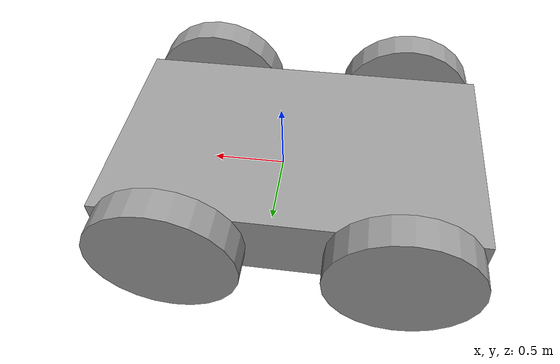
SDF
<?xml version='1.0'?>
<sdf version='1.6'>
  <model name='New_Car'>
    <link name='link_0'>
      <inertial>
        <mass>1</mass>
        <inertia>
          <ixx>0.166667</ixx>
          <ixy>0</ixy>
          <ixz>0</ixz>
          <iyy>0.166667</iyy>
          <iyz>0</iyz>
          <izz>0.166667</izz>
        </inertia>
        <pose frame=''>0 0 0 0 -0 0</pose>
      </inertial>
      <pose frame=''>-0.117187 6e-06 0.007816 0 -0 0</pose>
      <gravity>1</gravity>
      <self_collide>0</self_collide>
      <kinematic>0</kinematic>
      <enable_wind>0</enable_wind>
      <visual name='visual'>
        <pose frame=''>0 0 0 0 -0 0</pose>
        <geometry>
          <box>
            <size>2.5 1.5 0.5</size>
          </box>
        </geometry>
        <material>
          <lighting>1</lighting>
          <script>
            <uri>file://media/materials/scripts/gazebo.material</uri>
            <name>Gazebo/Grey</name>
          </script>
          <shader type='vertex'>
            <normal_map>__default__</normal_map>
          </shader>
          <ambient>0.3 0.3 0.3 1</ambient>
          <diffuse>0.7 0.7 0.7 1</diffuse>
          <specular>0.01 0.01 0.01 1</specular>
          <emissive>0 0 0 1</emissive>
        </material>
        <transparency>0</transparency>
        <cast_shadows>1</cast_shadows>
      </visual>
      <collision name='collision'>
        <laser_retro>0</laser_retro>
        <max_contacts>10</max_contacts>
        <pose frame=''>0 0 0 0 -0 0</pose>
        <geometry>
          <box>
            <size>2.5 1.5 0.5</size>
          </box>
        </geometry>
        <surface>
          <friction>
            <ode>
              <mu>1</mu>
              <mu2>1</mu2>
              <fdir1>0 0 0</fdir1>
              <slip1>0</slip1>
              <slip2>0</slip2>
            </ode>
            <torsional>
              <coefficient>1</coefficient>
              <patch_radius>0</patch_radius>
              <surface_radius>0</surface_radius>
              <use_patch_radius>1</use_patch_radius>
              <ode>
                <slip>0</slip>
              </ode>
            </torsional>
          </friction>
          <bounce>
            <restitution_coefficient>0</restitution_coefficient>
            <threshold>1e+06</threshold>
          </bounce>
          <contact>
            <collide_without_contact>0</collide_without_contact>
            <collide_without_contact_bitmask>1</collide_without_contact_bitmask>
            <collide_bitmask>1</collide_bitmask>
            <ode>
              <soft_cfm>0</soft_cfm>
              <soft_erp>0.2</soft_erp>
              <kp>1e+13</kp>
              <kd>1</kd>
              <max_vel>0.01</max_vel>
              <min_depth>0</min_depth>
            </ode>
            <bullet>
              <split_impulse>1</split_impulse>
              <split_impulse_penetration_threshold>-0.01</split_impulse_penetration_threshold>
              <soft_cfm>0</soft_cfm>
              <soft_erp>0.2</soft_erp>
              <kp>1e+13</kp>
              <kd>1</kd>
            </bullet>
          </contact>
        </surface>
      </collision>
    </link>
    <link name='link_1'>
      <inertial>
        <mass>0.21093</mass>
        <inertia>
          <ixx>0.0139652</ixx>
          <ixy>0</ixy>
          <ixz>0</ixz>
          <iyy>0.0139652</iyy>
          <iyz>0</iyz>
          <izz>0.0263662</izz>
        </inertia>
        <pose frame=''>0 0 0 0 -0 0</pose>
      </inertial>
      <pose frame=''>0.632813 -0.855861 0.007802 1.57 -0 0</pose>
      <gravity>1</gravity>
      <self_collide>0</self_collide>
      <kinematic>0</kinematic>
      <enable_wind>0</enable_wind>
      <visual name='visual'>
        <pose frame=''>0 0 0 0 -0 0</pose>
        <geometry>
          <cylinder>
            <radius>0.5</radius>
            <length>0.210938</length>
          </cylinder>
        </geometry>
        <material>
          <lighting>1</lighting>
          <script>
            <uri>file://media/materials/scripts/gazebo.material</uri>
            <name>Gazebo/Grey</name>
          </script>
          <shader type='vertex'>
            <normal_map>__default__</normal_map>
          </shader>
          <ambient>0.3 0.3 0.3 1</ambient>
          <diffuse>0.7 0.7 0.7 1</diffuse>
          <specular>0.01 0.01 0.01 1</specular>
          <emissive>0 0 0 1</emissive>
        </material>
        <transparency>0</transparency>
        <cast_shadows>1</cast_shadows>
      </visual>
      <collision name='collision'>
        <laser_retro>0</laser_retro>
        <max_contacts>10</max_contacts>
        <pose frame=''>0 0 0 0 -0 0</pose>
        <geometry>
          <cylinder>
            <radius>0.5</radius>
            <length>0.210938</length>
          </cylinder>
        </geometry>
        <surface>
          <friction>
            <ode>
              <mu>1</mu>
              <mu2>1</mu2>
              <fdir1>0 0 0</fdir1>
              <slip1>0</slip1>
              <slip2>0</slip2>
            </ode>
            <torsional>
              <coefficient>1</coefficient>
              <patch_radius>0</patch_radius>
              <surface_radius>0</surface_radius>
              <use_patch_radius>1</use_patch_radius>
              <ode>
                <slip>0</slip>
              </ode>
            </torsional>
          </friction>
          <bounce>
            <restitution_coefficient>0</restitution_coefficient>
            <threshold>1e+06</threshold>
          </bounce>
          <contact>
            <collide_without_contact>0</collide_without_contact>
            <collide_without_contact_bitmask>1</collide_without_contact_bitmask>
            <collide_bitmask>1</collide_bitmask>
            <ode>
              <soft_cfm>0</soft_cfm>
              <soft_erp>0.2</soft_erp>
              <kp>1e+13</kp>
              <kd>1</kd>
              <max_vel>0.01</max_vel>
              <min_depth>0</min_depth>
            </ode>
            <bullet>
              <split_impulse>1</split_impulse>
              <split_impulse_penetration_threshold>-0.01</split_impulse_penetration_threshold>
              <soft_cfm>0</soft_cfm>
              <soft_erp>0.2</soft_erp>
              <kp>1e+13</kp>
              <kd>1</kd>
            </bullet>
          </contact>
        </surface>
      </collision>
    </link>
    <link name='link_1_clone'>
      <inertial>
        <mass>0.21093</mass>
        <inertia>
          <ixx>0.0139652</ixx>
          <ixy>0</ixy>
          <ixz>0</ixz>
          <iyy>0.0139652</iyy>
          <iyz>0</iyz>
          <izz>0.0263662</izz>
        </inertia>
        <pose frame=''>0 0 0 0 -0 0</pose>
      </inertial>
      <pose frame=''>0.632813 0.855873 0.007816 1.57 -0 0</pose>
      <gravity>1</gravity>
      <self_collide>0</self_collide>
      <kinematic>0</kinematic>
      <enable_wind>0</enable_wind>
      <visual name='visual'>
        <pose frame=''>0 0 0 0 -0 0</pose>
        <geometry>
          <cylinder>
            <radius>0.5</radius>
            <length>0.210938</length>
          </cylinder>
        </geometry>
        <material>
          <lighting>1</lighting>
          <script>
            <uri>file://media/materials/scripts/gazebo.material</uri>
            <name>Gazebo/Grey</name>
          </script>
          <shader type='vertex'>
            <normal_map>__default__</normal_map>
          </shader>
          <ambient>0.3 0.3 0.3 1</ambient>
          <diffuse>0.7 0.7 0.7 1</diffuse>
          <specular>0.01 0.01 0.01 1</specular>
          <emissive>0 0 0 1</emissive>
        </material>
        <transparency>0</transparency>
        <cast_shadows>1</cast_shadows>
      </visual>
      <collision name='collision'>
        <laser_retro>0</laser_retro>
        <max_contacts>10</max_contacts>
        <pose frame=''>0 0 0 0 -0 0</pose>
        <geometry>
          <cylinder>
            <radius>0.5</radius>
            <length>0.210938</length>
          </cylinder>
        </geometry>
        <surface>
          <friction>
            <ode>
              <mu>1</mu>
              <mu2>1</mu2>
              <fdir1>0 0 0</fdir1>
              <slip1>0</slip1>
              <slip2>0</slip2>
            </ode>
            <torsional>
              <coefficient>1</coefficient>
              <patch_radius>0</patch_radius>
              <surface_radius>0</surface_radius>
              <use_patch_radius>1</use_patch_radius>
              <ode>
                <slip>0</slip>
              </ode>
            </torsional>
          </friction>
          <bounce>
            <restitution_coefficient>0</restitution_coefficient>
            <threshold>1e+06</threshold>
          </bounce>
          <contact>
            <collide_without_contact>0</collide_without_contact>
            <collide_without_contact_bitmask>1</collide_without_contact_bitmask>
            <collide_bitmask>1</collide_bitmask>
            <ode>
              <soft_cfm>0</soft_cfm>
              <soft_erp>0.2</soft_erp>
              <kp>1e+13</kp>
              <kd>1</kd>
              <max_vel>0.01</max_vel>
              <min_depth>0</min_depth>
            </ode>
            <bullet>
              <split_impulse>1</split_impulse>
              <split_impulse_penetration_threshold>-0.01</split_impulse_penetration_threshold>
              <soft_cfm>0</soft_cfm>
              <soft_erp>0.2</soft_erp>
              <kp>1e+13</kp>
              <kd>1</kd>
            </bullet>
          </contact>
        </surface>
      </collision>
    </link>
    <link name='link_1_clone_0'>
      <inertial>
        <mass>0.21093</mass>
        <inertia>
          <ixx>0.0139652</ixx>
          <ixy>0</ixy>
          <ixz>0</ixz>
          <iyy>0.0139652</iyy>
          <iyz>0</iyz>
          <izz>0.0263662</izz>
        </inertia>
        <pose frame=''>0 0 0 0 -0 0</pose>
      </inertial>
      <pose frame=''>-0.867187 -0.855861 0.007816 1.57 -0 0</pose>
      <gravity>1</gravity>
      <self_collide>0</self_collide>
      <kinematic>0</kinematic>
      <enable_wind>0</enable_wind>
      <visual name='visual'>
        <pose frame=''>0 0 0 0 -0 0</pose>
        <geometry>
          <cylinder>
            <radius>0.5</radius>
            <length>0.210938</length>
          </cylinder>
        </geometry>
        <material>
          <lighting>1</lighting>
          <script>
            <uri>file://media/materials/scripts/gazebo.material</uri>
            <name>Gazebo/Grey</name>
          </script>
          <shader type='vertex'>
            <normal_map>__default__</normal_map>
          </shader>
          <ambient>0.3 0.3 0.3 1</ambient>
          <diffuse>0.7 0.7 0.7 1</diffuse>
          <specular>0.01 0.01 0.01 1</specular>
          <emissive>0 0 0 1</emissive>
        </material>
        <transparency>0</transparency>
        <cast_shadows>1</cast_shadows>
      </visual>
      <collision name='collision'>
        <laser_retro>0</laser_retro>
        <max_contacts>10</max_contacts>
        <pose frame=''>0 0 0 0 -0 0</pose>
        <geometry>
          <cylinder>
            <radius>0.5</radius>
            <length>0.210938</length>
          </cylinder>
        </geometry>
        <surface>
          <friction>
            <ode>
              <mu>1</mu>
              <mu2>1</mu2>
              <fdir1>0 0 0</fdir1>
              <slip1>0</slip1>
              <slip2>0</slip2>
            </ode>
            <torsional>
              <coefficient>1</coefficient>
              <patch_radius>0</patch_radius>
              <surface_radius>0</surface_radius>
              <use_patch_radius>1</use_patch_radius>
              <ode>
                <slip>0</slip>
              </ode>
            </torsional>
          </friction>
          <bounce>
            <restitution_coefficient>0</restitution_coefficient>
            <threshold>1e+06</threshold>
          </bounce>
          <contact>
            <collide_without_contact>0</collide_without_contact>
            <collide_without_contact_bitmask>1</collide_without_contact_bitmask>
            <collide_bitmask>1</collide_bitmask>
            <ode>
              <soft_cfm>0</soft_cfm>
              <soft_erp>0.2</soft_erp>
              <kp>1e+13</kp>
              <kd>1</kd>
              <max_vel>0.01</max_vel>
              <min_depth>0</min_depth>
            </ode>
            <bullet>
              <split_impulse>1</split_impulse>
              <split_impulse_penetration_threshold>-0.01</split_impulse_penetration_threshold>
              <soft_cfm>0</soft_cfm>
              <soft_erp>0.2</soft_erp>
              <kp>1e+13</kp>
              <kd>1</kd>
            </bullet>
          </contact>
        </surface>
      </collision>
    </link>
    <link name='link_1_clone_1'>
      <inertial>
        <mass>0.21093</mass>
        <inertia>
          <ixx>0.0139652</ixx>
          <ixy>0</ixy>
          <ixz>0</ixz>
          <iyy>0.0139652</iyy>
          <iyz>0</iyz>
          <izz>0.0263662</izz>
        </inertia>
        <pose frame=''>0 0 0 0 -0 0</pose>
      </inertial>
      <pose frame=''>-0.867187 0.855873 0.007816 1.57 -0 0</pose>
      <gravity>1</gravity>
      <self_collide>0</self_collide>
      <kinematic>0</kinematic>
      <enable_wind>0</enable_wind>
      <visual name='visual'>
        <pose frame=''>0 0 0 0 -0 0</pose>
        <geometry>
          <cylinder>
            <radius>0.5</radius>
            <length>0.210938</length>
          </cylinder>
        </geometry>
        <material>
          <lighting>1</lighting>
          <script>
            <uri>file://media/materials/scripts/gazebo.material</uri>
            <name>Gazebo/Grey</name>
          </script>
          <shader type='vertex'>
            <normal_map>__default__</normal_map>
          </shader>
          <ambient>0.3 0.3 0.3 1</ambient>
          <diffuse>0.7 0.7 0.7 1</diffuse>
          <specular>0.01 0.01 0.01 1</specular>
          <emissive>0 0 0 1</emissive>
        </material>
        <transparency>0</transparency>
        <cast_shadows>1</cast_shadows>
      </visual>
      <collision name='collision'>
        <laser_retro>0</laser_retro>
        <max_contacts>10</max_contacts>
        <pose frame=''>0 0 0 0 -0 0</pose>
        <geometry>
          <cylinder>
            <radius>0.5</radius>
            <length>0.210938</length>
          </cylinder>
        </geometry>
        <surface>
          <friction>
            <ode>
              <mu>1</mu>
              <mu2>1</mu2>
              <fdir1>0 0 0</fdir1>
              <slip1>0</slip1>
              <slip2>0</slip2>
            </ode>
            <torsional>
              <coefficient>1</coefficient>
              <patch_radius>0</patch_radius>
              <surface_radius>0</surface_radius>
              <use_patch_radius>1</use_patch_radius>
              <ode>
                <slip>0</slip>
              </ode>
            </torsional>
          </friction>
          <bounce>
            <restitution_coefficient>0</restitution_coefficient>
            <threshold>1e+06</threshold>
          </bounce>
          <contact>
            <collide_without_contact>0</collide_without_contact>
            <collide_without_contact_bitmask>1</collide_without_contact_bitmask>
            <collide_bitmask>1</collide_bitmask>
            <ode>
              <soft_cfm>0</soft_cfm>
              <soft_erp>0.2</soft_erp>
              <kp>1e+13</kp>
              <kd>1</kd>
              <max_vel>0.01</max_vel>
              <min_depth>0</min_depth>
            </ode>
            <bullet>
              <split_impulse>1</split_impulse>
              <split_impulse_penetration_threshold>-0.01</split_impulse_penetration_threshold>
              <soft_cfm>0</soft_cfm>
              <soft_erp>0.2</soft_erp>
              <kp>1e+13</kp>
              <kd>1</kd>
            </bullet>
          </contact>
        </surface>
      </collision>
    </link>
    <link name='link_2'>
      <inertial>
        <mass>0.00854652</mass>
        <inertia>
          <ixx>0.00160704</ixx>
          <ixy>0</ixy>
          <ixz>0</ixz>
          <iyy>0.00160704</iyy>
          <iyz>0</iyz>
          <izz>9.13434e-06</izz>
        </inertia>
        <pose frame=''>0 0 0 0 -0 0</pose>
      </inertial>
      <pose frame=''>0.58593 -3.1e-05 -0.039067 1.57 -0 0</pose>
      <gravity>1</gravity>
      <self_collide>0</self_collide>
      <kinematic>0</kinematic>
      <enable_wind>0</enable_wind>
      <visual name='visual'>
        <pose frame=''>0 0 0 0 -0 0</pose>
        <geometry>
          <cylinder>
            <radius>0.0462337</radius>
            <length>1.5</length>
          </cylinder>
        </geometry>
        <material>
          <lighting>1</lighting>
          <script>
            <uri>file://media/materials/scripts/gazebo.material</uri>
            <name>Gazebo/Grey</name>
          </script>
          <shader type='vertex'>
            <normal_map>__default__</normal_map>
          </shader>
          <ambient>0.3 0.3 0.3 1</ambient>
          <diffuse>0.7 0.7 0.7 1</diffuse>
          <specular>0.01 0.01 0.01 1</specular>
          <emissive>0 0 0 1</emissive>
        </material>
        <transparency>0</transparency>
        <cast_shadows>1</cast_shadows>
      </visual>
      <collision name='collision'>
        <laser_retro>0</laser_retro>
        <max_contacts>10</max_contacts>
        <pose frame=''>0 0 0 0 -0 0</pose>
        <geometry>
          <cylinder>
            <radius>0.046234</radius>
            <length>1.5</length>
          </cylinder>
        </geometry>
        <surface>
          <friction>
            <ode>
              <mu>1</mu>
              <mu2>1</mu2>
              <fdir1>0 0 0</fdir1>
              <slip1>0</slip1>
              <slip2>0</slip2>
            </ode>
            <torsional>
              <coefficient>1</coefficient>
              <patch_radius>0</patch_radius>
              <surface_radius>0</surface_radius>
              <use_patch_radius>1</use_patch_radius>
              <ode>
                <slip>0</slip>
              </ode>
            </torsional>
          </friction>
          <bounce>
            <restitution_coefficient>0</restitution_coefficient>
            <threshold>1e+06</threshold>
          </bounce>
          <contact>
            <collide_without_contact>0</collide_without_contact>
            <collide_without_contact_bitmask>1</collide_without_contact_bitmask>
            <collide_bitmask>1</collide_bitmask>
            <ode>
              <soft_cfm>0</soft_cfm>
              <soft_erp>0.2</soft_erp>
              <kp>1e+13</kp>
              <kd>1</kd>
              <max_vel>0.01</max_vel>
              <min_depth>0</min_depth>
            </ode>
            <bullet>
              <split_impulse>1</split_impulse>
              <split_impulse_penetration_threshold>-0.01</split_impulse_penetration_threshold>
              <soft_cfm>0</soft_cfm>
              <soft_erp>0.2</soft_erp>
              <kp>1e+13</kp>
              <kd>1</kd>
            </bullet>
          </contact>
        </surface>
      </collision>
    </link>
    <link name='link_2_clone'>
      <inertial>
        <mass>0.00854652</mass>
        <inertia>
          <ixx>0.00160704</ixx>
          <ixy>0</ixy>
          <ixz>0</ixz>
          <iyy>0.00160704</iyy>
          <iyz>0</iyz>
          <izz>9.13434e-06</izz>
        </inertia>
        <pose frame=''>0 0 0 0 -0 0</pose>
      </inertial>
      <pose frame=''>-0.851695 -0.013351 0.0078 1.56999 -2.2e-05 0.018183</pose>
      <gravity>1</gravity>
      <self_collide>0</self_collide>
      <kinematic>0</kinematic>
      <enable_wind>0</enable_wind>
      <visual name='visual'>
        <pose frame=''>0 0 0 0 -0 0</pose>
        <geometry>
          <cylinder>
            <radius>0.0462337</radius>
            <length>1.5</length>
          </cylinder>
        </geometry>
        <material>
          <lighting>1</lighting>
          <script>
            <uri>file://media/materials/scripts/gazebo.material</uri>
            <name>Gazebo/Grey</name>
          </script>
          <shader type='vertex'>
            <normal_map>__default__</normal_map>
          </shader>
          <ambient>0.3 0.3 0.3 1</ambient>
          <diffuse>0.7 0.7 0.7 1</diffuse>
          <specular>0.01 0.01 0.01 1</specular>
          <emissive>0 0 0 1</emissive>
        </material>
        <transparency>0</transparency>
        <cast_shadows>1</cast_shadows>
      </visual>
      <collision name='collision'>
        <laser_retro>0</laser_retro>
        <max_contacts>10</max_contacts>
        <pose frame=''>0 0 0 0 -0 0</pose>
        <geometry>
          <cylinder>
            <radius>0.046234</radius>
            <length>1.5</length>
          </cylinder>
        </geometry>
        <surface>
          <friction>
            <ode>
              <mu>1</mu>
              <mu2>1</mu2>
              <fdir1>0 0 0</fdir1>
              <slip1>0</slip1>
              <slip2>0</slip2>
            </ode>
            <torsional>
              <coefficient>1</coefficient>
              <patch_radius>0</patch_radius>
              <surface_radius>0</surface_radius>
              <use_patch_radius>1</use_patch_radius>
              <ode>
                <slip>0</slip>
              </ode>
            </torsional>
          </friction>
          <bounce>
            <restitution_coefficient>0</restitution_coefficient>
            <threshold>1e+06</threshold>
          </bounce>
          <contact>
            <collide_without_contact>0</collide_without_contact>
            <collide_without_contact_bitmask>1</collide_without_contact_bitmask>
            <collide_bitmask>1</collide_bitmask>
            <ode>
              <soft_cfm>0</soft_cfm>
              <soft_erp>0.2</soft_erp>
              <kp>1e+13</kp>
              <kd>1</kd>
              <max_vel>0.01</max_vel>
              <min_depth>0</min_depth>
            </ode>
            <bullet>
              <split_impulse>1</split_impulse>
              <split_impulse_penetration_threshold>-0.01</split_impulse_penetration_threshold>
              <soft_cfm>0</soft_cfm>
              <soft_erp>0.2</soft_erp>
              <kp>1e+13</kp>
              <kd>1</kd>
            </bullet>
          </contact>
        </surface>
      </collision>
    </link>
    <joint name='Steering' type='revolute'>
      <parent>link_0</parent>
      <child>link_2</child>
      <pose frame=''>0 0 0 0 -0 0</pose>
      <axis>
        <xyz>0 1 0</xyz>
        <use_parent_model_frame>0</use_parent_model_frame>
        <limit>
          <lower>-0.785398</lower>
          <upper>0.785398</upper>
          <effort>-1</effort>
          <velocity>-1</velocity>
        </limit>
        <dynamics>
          <spring_reference>0</spring_reference>
          <spring_stiffness>0</spring_stiffness>
          <damping>0</damping>
          <friction>0</friction>
        </dynamics>
      </axis>
      <physics>
        <ode>
          <limit>
            <cfm>0</cfm>
            <erp>0.2</erp>
          </limit>
          <suspension>
            <cfm>0</cfm>
            <erp>0.2</erp>
          </suspension>
        </ode>
      </physics>
    </joint>
    <joint name='Engine' type='revolute'>
      <parent>link_0</parent>
      <child>link_2_clone</child>
      <pose frame=''>0 0 0 0 -0 0</pose>
      <axis>
        <xyz>0 0 1</xyz>
        <use_parent_model_frame>0</use_parent_model_frame>
        <limit>
          <lower>-1.79769e+308</lower>
          <upper>1.79769e+308</upper>
          <effort>-1</effort>
          <velocity>-1</velocity>
        </limit>
        <dynamics>
          <spring_reference>0</spring_reference>
          <spring_stiffness>0</spring_stiffness>
          <damping>0</damping>
          <friction>0</friction>
        </dynamics>
      </axis>
      <physics>
        <ode>
          <limit>
            <cfm>0</cfm>
            <erp>0.2</erp>
          </limit>
          <suspension>
            <cfm>0</cfm>
            <erp>0.2</erp>
          </suspension>
        </ode>
      </physics>
    </joint>
    <joint name='link_2_JOINT_5' type='revolute'>
      <parent>link_2</parent>
      <child>link_1</child>
      <pose frame=''>0 0 0 0 -0 0</pose>
      <axis>
        <xyz>0 0 1</xyz>
        <use_parent_model_frame>0</use_parent_model_frame>
        <limit>
          <lower>-1.79769e+308</lower>
          <upper>1.79769e+308</upper>
          <effort>-1</effort>
          <velocity>-1</velocity>
        </limit>
        <dynamics>
          <spring_reference>0</spring_reference>
          <spring_stiffness>0</spring_stiffness>
          <damping>0</damping>
          <friction>0</friction>
        </dynamics>
      </axis>
      <physics>
        <ode>
          <limit>
            <cfm>0</cfm>
            <erp>0.2</erp>
          </limit>
          <suspension>
            <cfm>0</cfm>
            <erp>0.2</erp>
          </suspension>
        </ode>
      </physics>
    </joint>
    <joint name='link_2_JOINT_6' type='revolute'>
      <parent>link_2</parent>
      <child>link_1_clone</child>
      <pose frame=''>0 0 0 0 -0 0</pose>
      <axis>
        <xyz>0 0 -1</xyz>
        <use_parent_model_frame>0</use_parent_model_frame>
        <limit>
          <lower>-1.79769e+308</lower>
          <upper>1.79769e+308</upper>
          <effort>-1</effort>
          <velocity>-1</velocity>
        </limit>
        <dynamics>
          <spring_reference>0</spring_reference>
          <spring_stiffness>0</spring_stiffness>
          <damping>0</damping>
          <friction>0</friction>
        </dynamics>
      </axis>
      <physics>
        <ode>
          <limit>
            <cfm>0</cfm>
            <erp>0.2</erp>
          </limit>
          <suspension>
            <cfm>0</cfm>
            <erp>0.2</erp>
          </suspension>
        </ode>
      </physics>
    </joint>
    <joint name='link_2_clone_JOINT_1' type='fixed'>
      <parent>link_2_clone</parent>
      <child>link_1_clone_1</child>
      <pose frame=''>0 0 0 0 -0 0</pose>
      <physics>
        <ode>
          <limit>
            <cfm>0</cfm>
            <erp>0.2</erp>
          </limit>
          <suspension>
            <cfm>0</cfm>
            <erp>0.2</erp>
          </suspension>
        </ode>
      </physics>
    </joint>
    <joint name='link_2_clone_JOINT_2' type='fixed'>
      <parent>link_2_clone</parent>
      <child>link_1_clone_0</child>
      <pose frame=''>0 0 0 0 -0 0</pose>
      <physics>
        <ode>
          <limit>
            <cfm>0</cfm>
            <erp>0.2</erp>
          </limit>
          <suspension>
            <cfm>0</cfm>
            <erp>0.2</erp>
          </suspension>
        </ode>
      </physics>
    </joint>
    <static>0</static>
    <allow_auto_disable>1</allow_auto_disable>
  </model>
</sdf>
